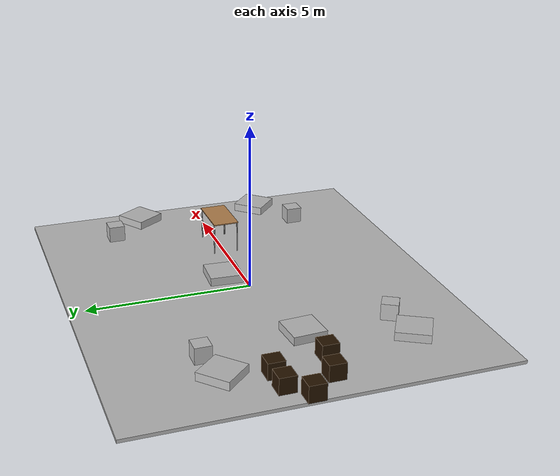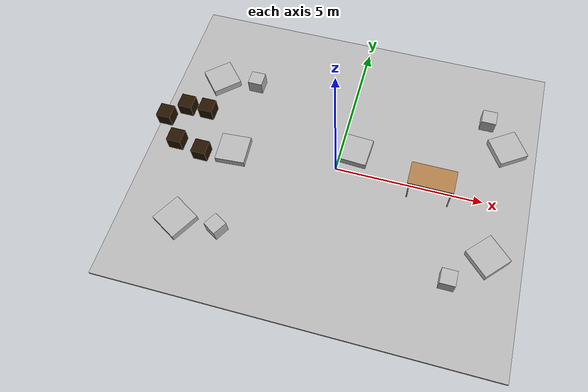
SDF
<sdf version="1.7">
 <world name="default">
  <scene><ambient>0.8 0.8 0.8 1</ambient><background>0.7 0.7 0.7 1</background><shadows>1</shadows></scene>
  <light name="sun" type="directional">
   <pose>-2 2 2 0 -0 0</pose>
   <diffuse>0.8 0.8 0.8 1</diffuse>
   <specular>0.2 0.2 0.2 1</specular>
   <attenuation>
    <range>1000</range>
    <constant>0.9</constant>
    <linear>0.01</linear>
    <quadratic>0.001</quadratic>
   </attenuation>
   <direction>-0.5 0.1 -0.9</direction>
   <spot><inner_angle>0</inner_angle><outer_angle>0</outer_angle><falloff>0</falloff></spot>
  </light>
  <model name="pisosala_forca">
   <static>1</static>
   <link name="course_link">
    <collision name="course_collision">
     <geometry><plane><normal>0 0 1</normal><size>10 13</size></plane></geometry>
     <surface><friction><ode><mu>100</mu><mu2>50</mu2></ode></friction></surface>
    </collision>
    <visual name="course_visual">
     <cast_shadows>0</cast_shadows>
     <geometry>
      <mesh><uri>model://forca/pisosala/materials/scripts/piso.dae</uri><scale>1 1 1</scale></mesh>
     </geometry>
    </visual>
   </link>
   <pose>0.031583 -0.000406 0 0 0 -1.57</pose>
  </model>
  <model name="lab404">
   <model name="table">
    <static>1</static>
    <link name="link">
     <collision name="surface">
      <pose>0 0 1 0 -0 0</pose>
      <geometry><box><size>1.5 0.8 0.03</size></box></geometry>
      <surface><friction><ode><mu>0.6</mu><mu2>0.6</mu2></ode></friction></surface>
     </collision>
     <visual name="visual1">
      <pose>0 0 1 0 -0 0</pose>
      <geometry><box><size>1.5 0.8 0.03</size></box></geometry>
      <material>
       <script><uri>file://media/materials/scripts/gazebo.material</uri><name>Gazebo/Wood</name></script>
      </material>
     </visual>
     <collision name="front_left_leg">
      <pose>0.68 0.38 0.5 0 -0 0</pose>
      <geometry><cylinder><radius>0.02</radius><length>1</length></cylinder></geometry>
     </collision>
     <visual name="front_left_leg">
      <pose>0.68 0.38 0.5 0 -0 0</pose>
      <geometry><cylinder><radius>0.02</radius><length>1</length></cylinder></geometry>
      <material>
       <script><uri>file://media/materials/scripts/gazebo.material</uri><name>Gazebo/Grey</name></script>
      </material>
     </visual>
     <collision name="front_right_leg">
      <pose>0.68 -0.38 0.5 0 -0 0</pose>
      <geometry><cylinder><radius>0.02</radius><length>1</length></cylinder></geometry>
     </collision>
     <visual name="front_right_leg">
      <pose>0.68 -0.38 0.5 0 -0 0</pose>
      <geometry><cylinder><radius>0.02</radius><length>1</length></cylinder></geometry>
      <material>
       <script><uri>file://media/materials/scripts/gazebo.material</uri><name>Gazebo/Grey</name></script>
      </material>
     </visual>
     <collision name="back_right_leg">
      <pose>-0.68 -0.38 0.5 0 -0 0</pose>
      <geometry><cylinder><radius>0.02</radius><length>1</length></cylinder></geometry>
     </collision>
     <visual name="back_right_leg">
      <pose>-0.68 -0.38 0.5 0 -0 0</pose>
      <geometry><cylinder><radius>0.02</radius><length>1</length></cylinder></geometry>
      <material>
       <script><uri>file://media/materials/scripts/gazebo.material</uri><name>Gazebo/Grey</name></script>
      </material>
     </visual>
     <collision name="back_left_leg">
      <pose>-0.68 0.38 0.5 0 -0 0</pose>
      <geometry><cylinder><radius>0.02</radius><length>1</length></cylinder></geometry>
     </collision>
     <visual name="back_left_leg">
      <pose>-0.68 0.38 0.5 0 -0 0</pose>
      <geometry><cylinder><radius>0.02</radius><length>1</length></cylinder></geometry>
      <material>
       <script><uri>file://media/materials/scripts/gazebo.material</uri><name>Gazebo/Grey</name></script>
      </material>
     </visual>
    </link>
   </model>
   <static>0</static>
   <pose>3.206 -0.04 0 0 -0 0</pose>
  </model>
  <model name="car">
   <static>1</static>
   <link name="box">
    <collision name="collision"><geometry><box><size>0.5 0.5 0.5</size></box></geometry></collision>
    <visual name="visual">
     <geometry><box><size>0.5 0.5 0.5</size></box></geometry>
     <material>
      <script>
       <uri>model://forca/objeto/car/materials/scripts</uri>
       <uri>model://forca/objeto/car/materials/textures</uri>
       <name>car</name>
      </script>
     </material>
    </visual>
   </link>
   <pose>4.31 -2.97 0.251305 0 -0 0</pose>
  </model>
  <model name="horse">
   <static>1</static>
   <link name="box">
    <collision name="collision"><geometry><box><size>0.5 0.5 0.5</size></box></geometry></collision>
    <visual name="visual">
     <geometry><box><size>0.5 0.5 0.5</size></box></geometry>
     <material>
      <script>
       <uri>model://forca/objeto/horse/materials/scripts</uri>
       <uri>model://forca/objeto/horse/materials/textures</uri>
       <name>horse</name>
      </script>
     </material>
    </visual>
   </link>
   <pose>-3.63207 2.60668 0.251305 0 -0 0</pose>
  </model>
  <model name="cow">
   <static>1</static>
   <link name="box">
    <collision name="collision"><geometry><box><size>0.5 0.5 0.5</size></box></geometry></collision>
    <visual name="visual">
     <geometry><box><size>0.5 0.5 0.5</size></box></geometry>
     <material>
      <script>
       <uri>model://forca/objeto/cow/materials/scripts</uri>
       <uri>model://forca/objeto/cow/materials/textures</uri>
       <name>cow</name>
      </script>
     </material>
    </visual>
   </link>
   <pose>4.707 3.08 0.251305 0 -0 0</pose>
  </model>
  <model name="dog">
   <static>1</static>
   <link name="box">
    <collision name="collision"><geometry><box><size>0.5 0.5 0.5</size></box></geometry></collision>
    <visual name="visual">
     <geometry><box><size>0.5 0.5 0.5</size></box></geometry>
     <material>
      <script>
       <uri>model://forca/objeto/dog/materials/scripts</uri>
       <uri>model://forca/objeto/dog/materials/textures</uri>
       <name>dog</name>
      </script>
     </material>
    </visual>
   </link>
   <pose>-3.10211 -3.12575 0.251305 0 0 -0.522088</pose>
  </model>
  <model name="creeper_50">
   <static>1</static>
   <link name="box">
    <collision name="collision">
     <geometry>
      <mesh><uri>model://pista_s/creepers/creeper_50/materials/textures/caixa.dae</uri><scale>1 1 1</scale></mesh>
     </geometry>
    </collision>
    <visual name="visual">
     <geometry>
      <mesh><uri>model://pista_s/creepers/creeper_50/materials/textures/caixa.dae</uri><scale>1 1 1</scale></mesh>
     </geometry>
    </visual>
   </link>
   <pose>5.37901 -1.96201 0.162 0 0 -2.32625</pose>
  </model>
  <model name="creeper_100">
   <static>1</static>
   <link name="box">
    <collision name="collision">
     <geometry>
      <mesh><uri>model://pista_s/creepers/creeper_100/materials/textures/caixa.dae</uri><scale>1 1 1</scale></mesh>
     </geometry>
    </collision>
    <visual name="visual">
     <geometry>
      <mesh><uri>model://pista_s/creepers/creeper_100/materials/textures/caixa.dae</uri><scale>1 1 1</scale></mesh>
     </geometry>
    </visual>
   </link>
   <pose>-4.88199 2.41036 0.162 0 -0 0.740136</pose>
  </model>
  <model name="creeper_150">
   <static>1</static>
   <link name="box">
    <collision name="collision">
     <geometry>
      <mesh><uri>model://pista_s/creepers/creeper_150/materials/textures/caixa.dae</uri><scale>1 1 1</scale></mesh>
     </geometry>
    </collision>
    <visual name="visual">
     <geometry>
      <mesh><uri>model://pista_s/creepers/creeper_150/materials/textures/caixa.dae</uri><scale>1 1 1</scale></mesh>
     </geometry>
    </visual>
   </link>
   <pose>-4.44136 -3.19448 0.162 0 -0 2.62417</pose>
  </model>
  <model name="creeper_200">
   <static>1</static>
   <link name="box">
    <collision name="collision">
     <geometry>
      <mesh><uri>model://pista_s/creepers/creeper_200/materials/textures/caixa.dae</uri><scale>1 1 1</scale></mesh>
     </geometry>
    </collision>
    <visual name="visual">
     <geometry>
      <mesh><uri>model://pista_s/creepers/creeper_200/materials/textures/caixa.dae</uri><scale>1 1 1</scale></mesh>
     </geometry>
    </visual>
   </link>
   <pose>0.502752 0.690028 0.162 0 0 -0.056589</pose>
  </model>
  <physics type="ode">
   <real_time_update_rate>1000</real_time_update_rate>
   <max_step_size>0.001</max_step_size>
   <real_time_factor>1</real_time_factor>
   <ode>
    <solver>
     <type>quick</type>
     <iters>150</iters>
     <precon_iters>0</precon_iters>
     <sor>1.4</sor>
     <use_dynamic_moi_rescaling>1</use_dynamic_moi_rescaling>
    </solver>
    <constraints>
     <cfm>1e-05</cfm>
     <erp>0.2</erp>
     <contact_max_correcting_vel>2000</contact_max_correcting_vel>
     <contact_surface_layer>0.01</contact_surface_layer>
    </constraints>
   </ode>
  </physics>
  <gravity>0 0 -9.8</gravity>
  <magnetic_field>6e-06 2.3e-05 -4.2e-05</magnetic_field>
  <atmosphere type="adiabatic"/>
  <spherical_coordinates>
   <surface_model>EARTH_WGS84</surface_model>
   <latitude_deg>0</latitude_deg>
   <longitude_deg>0</longitude_deg>
   <elevation>0</elevation>
   <heading_deg>0</heading_deg>
  </spherical_coordinates>
  <model name="cubo_1">
   <link name="link">
    <inertial>
     <mass>1</mass>
     <inertia>
      <ixx>0.166667</ixx>
      <ixy>0</ixy>
      <ixz>0</ixz>
      <iyy>0.166667</iyy>
      <iyz>0</iyz>
      <izz>0.166667</izz>
     </inertia>
    </inertial>
    <visual name="visual">
     <geometry><box><size>0.5 0.5 0.5</size></box></geometry>
     <material>
      <script><name>Gazebo/Grey</name><uri>file://media/materials/scripts/gazebo.material</uri></script>
      <shader type="vertex"><normal_map>__default__</normal_map></shader>
      <ambient>0.15 0.075 0 1</ambient>
      <diffuse>0.15 0.075 0 1</diffuse>
      <specular>0.15 0.075 0 1</specular>
      <emissive>0.15 0.075 0 1</emissive>
     </material>
    </visual>
    <collision name="collision">
     <geometry><box><size>0.5 0.5 0.5</size></box></geometry>
     <surface>
      <friction>
       <ode><mu>1</mu><mu2>1</mu2><fdir1>0 0 0</fdir1><slip1>0</slip1><slip2>0</slip2></ode>
       <torsional>
        <coefficient>1</coefficient>
        <patch_radius>0</patch_radius>
        <surface_radius>0</surface_radius>
        <use_patch_radius>1</use_patch_radius>
        <ode><slip>0</slip></ode>
       </torsional>
      </friction>
      <bounce><restitution_coefficient>0</restitution_coefficient><threshold>1e+06</threshold></bounce>
      <contact>
       <collide_without_contact>0</collide_without_contact>
       <collide_without_contact_bitmask>1</collide_without_contact_bitmask>
       <collide_bitmask>1</collide_bitmask>
       <ode>
        <soft_cfm>0</soft_cfm>
        <soft_erp>0.2</soft_erp>
        <kp>1e+13</kp>
        <kd>1</kd>
        <max_vel>0.01</max_vel>
        <min_depth>0</min_depth>
       </ode>
       <bullet>
        <split_impulse>1</split_impulse>
        <split_impulse_penetration_threshold>-0.01</split_impulse_penetration_threshold>
        <soft_cfm>0</soft_cfm>
        <soft_erp>0.2</soft_erp>
        <kp>1e+13</kp>
        <kd>1</kd>
       </bullet>
      </contact>
     </surface>
    </collision>
   </link>
   <static>0</static>
   <pose>-6.27015 0.463716 0.249995 9e-06 -9e-06 0</pose>
  </model>
  <model name="cubo_1_0">
   <link name="link">
    <inertial>
     <mass>1</mass>
     <inertia>
      <ixx>0.166667</ixx>
      <ixy>0</ixy>
      <ixz>0</ixz>
      <iyy>0.166667</iyy>
      <iyz>0</iyz>
      <izz>0.166667</izz>
     </inertia>
    </inertial>
    <visual name="visual">
     <geometry><box><size>0.5 0.5 0.5</size></box></geometry>
     <material>
      <script><name>Gazebo/Grey</name><uri>file://media/materials/scripts/gazebo.material</uri></script>
      <shader type="vertex"><normal_map>__default__</normal_map></shader>
      <ambient>0.15 0.075 0 1</ambient>
      <diffuse>0.15 0.075 0 1</diffuse>
      <specular>0.15 0.075 0 1</specular>
      <emissive>0.15 0.075 0 1</emissive>
     </material>
    </visual>
    <collision name="collision">
     <geometry><box><size>0.5 0.5 0.5</size></box></geometry>
     <surface>
      <friction>
       <ode><mu>1</mu><mu2>1</mu2><fdir1>0 0 0</fdir1><slip1>0</slip1><slip2>0</slip2></ode>
       <torsional>
        <coefficient>1</coefficient>
        <patch_radius>0</patch_radius>
        <surface_radius>0</surface_radius>
        <use_patch_radius>1</use_patch_radius>
        <ode><slip>0</slip></ode>
       </torsional>
      </friction>
      <bounce><restitution_coefficient>0</restitution_coefficient><threshold>1e+06</threshold></bounce>
      <contact>
       <collide_without_contact>0</collide_without_contact>
       <collide_without_contact_bitmask>1</collide_without_contact_bitmask>
       <collide_bitmask>1</collide_bitmask>
       <ode>
        <soft_cfm>0</soft_cfm>
        <soft_erp>0.2</soft_erp>
        <kp>1e+13</kp>
        <kd>1</kd>
        <max_vel>0.01</max_vel>
        <min_depth>0</min_depth>
       </ode>
       <bullet>
        <split_impulse>1</split_impulse>
        <split_impulse_penetration_threshold>-0.01</split_impulse_penetration_threshold>
        <soft_cfm>0</soft_cfm>
        <soft_erp>0.2</soft_erp>
        <kp>1e+13</kp>
        <kd>1</kd>
       </bullet>
      </contact>
     </surface>
    </collision>
   </link>
   <static>0</static>
   <pose>-5.54412 -0.383655 0.249996 -9e-06 9e-06 0</pose>
  </model>
  <model name="cubo_1_1">
   <link name="link">
    <inertial>
     <mass>1</mass>
     <inertia>
      <ixx>0.166667</ixx>
      <ixy>0</ixy>
      <ixz>0</ixz>
      <iyy>0.166667</iyy>
      <iyz>0</iyz>
      <izz>0.166667</izz>
     </inertia>
    </inertial>
    <visual name="visual">
     <geometry><box><size>0.5 0.5 0.5</size></box></geometry>
     <material>
      <script><name>Gazebo/Grey</name><uri>file://media/materials/scripts/gazebo.material</uri></script>
      <shader type="vertex"><normal_map>__default__</normal_map></shader>
      <ambient>0.15 0.075 0 1</ambient>
      <diffuse>0.15 0.075 0 1</diffuse>
      <specular>0.15 0.075 0 1</specular>
      <emissive>0.15 0.075 0 1</emissive>
     </material>
    </visual>
    <collision name="collision">
     <geometry><box><size>0.5 0.5 0.5</size></box></geometry>
     <surface>
      <friction>
       <ode><mu>1</mu><mu2>1</mu2><fdir1>0 0 0</fdir1><slip1>0</slip1><slip2>0</slip2></ode>
       <torsional>
        <coefficient>1</coefficient>
        <patch_radius>0</patch_radius>
        <surface_radius>0</surface_radius>
        <use_patch_radius>1</use_patch_radius>
        <ode><slip>0</slip></ode>
       </torsional>
      </friction>
      <bounce><restitution_coefficient>0</restitution_coefficient><threshold>1e+06</threshold></bounce>
      <contact>
       <collide_without_contact>0</collide_without_contact>
       <collide_without_contact_bitmask>1</collide_without_contact_bitmask>
       <collide_bitmask>1</collide_bitmask>
       <ode>
        <soft_cfm>0</soft_cfm>
        <soft_erp>0.2</soft_erp>
        <kp>1e+13</kp>
        <kd>1</kd>
        <max_vel>0.01</max_vel>
        <min_depth>0</min_depth>
       </ode>
       <bullet>
        <split_impulse>1</split_impulse>
        <split_impulse_penetration_threshold>-0.01</split_impulse_penetration_threshold>
        <soft_cfm>0</soft_cfm>
        <soft_erp>0.2</soft_erp>
        <kp>1e+13</kp>
        <kd>1</kd>
       </bullet>
      </contact>
     </surface>
    </collision>
   </link>
   <static>0</static>
   <pose>-5.70256 1.03089 0.249995 9e-06 -9e-06 0</pose>
  </model>
  <model name="cubo_1_2">
   <link name="link">
    <inertial>
     <mass>1</mass>
     <inertia>
      <ixx>0.166667</ixx>
      <ixy>0</ixy>
      <ixz>0</ixz>
      <iyy>0.166667</iyy>
      <iyz>0</iyz>
      <izz>0.166667</izz>
     </inertia>
    </inertial>
    <visual name="visual">
     <geometry><box><size>0.5 0.5 0.5</size></box></geometry>
     <material>
      <script><name>Gazebo/Grey</name><uri>file://media/materials/scripts/gazebo.material</uri></script>
      <shader type="vertex"><normal_map>__default__</normal_map></shader>
      <ambient>0.15 0.075 0 1</ambient>
      <diffuse>0.15 0.075 0 1</diffuse>
      <specular>0.15 0.075 0 1</specular>
      <emissive>0.15 0.075 0 1</emissive>
     </material>
    </visual>
    <collision name="collision">
     <geometry><box><size>0.5 0.5 0.5</size></box></geometry>
     <surface>
      <friction>
       <ode><mu>1</mu><mu2>1</mu2><fdir1>0 0 0</fdir1><slip1>0</slip1><slip2>0</slip2></ode>
       <torsional>
        <coefficient>1</coefficient>
        <patch_radius>0</patch_radius>
        <surface_radius>0</surface_radius>
        <use_patch_radius>1</use_patch_radius>
        <ode><slip>0</slip></ode>
       </torsional>
      </friction>
      <bounce><restitution_coefficient>0</restitution_coefficient><threshold>1e+06</threshold></bounce>
      <contact>
       <collide_without_contact>0</collide_without_contact>
       <collide_without_contact_bitmask>1</collide_without_contact_bitmask>
       <collide_bitmask>1</collide_bitmask>
       <ode>
        <soft_cfm>0</soft_cfm>
        <soft_erp>0.2</soft_erp>
        <kp>1e+13</kp>
        <kd>1</kd>
        <max_vel>0.01</max_vel>
        <min_depth>0</min_depth>
       </ode>
       <bullet>
        <split_impulse>1</split_impulse>
        <split_impulse_penetration_threshold>-0.01</split_impulse_penetration_threshold>
        <soft_cfm>0</soft_cfm>
        <soft_erp>0.2</soft_erp>
        <kp>1e+13</kp>
        <kd>1</kd>
       </bullet>
      </contact>
     </surface>
    </collision>
   </link>
   <static>0</static>
   <pose>-4.57624 -0.592485 0.249995 9e-06 -9e-06 0</pose>
  </model>
  <model name="cubo_1_3">
   <link name="link">
    <inertial>
     <mass>1</mass>
     <inertia>
      <ixx>0.166667</ixx>
      <ixy>0</ixy>
      <ixz>0</ixz>
      <iyy>0.166667</iyy>
      <iyz>0</iyz>
      <izz>0.166667</izz>
     </inertia>
    </inertial>
    <visual name="visual">
     <geometry><box><size>0.5 0.5 0.5</size></box></geometry>
     <material>
      <script><name>Gazebo/Grey</name><uri>file://media/materials/scripts/gazebo.material</uri></script>
      <shader type="vertex"><normal_map>__default__</normal_map></shader>
      <ambient>0.15 0.075 0 1</ambient>
      <diffuse>0.15 0.075 0 1</diffuse>
      <specular>0.15 0.075 0 1</specular>
      <emissive>0.15 0.075 0 1</emissive>
     </material>
    </visual>
    <collision name="collision">
     <geometry><box><size>0.5 0.5 0.5</size></box></geometry>
     <surface>
      <friction>
       <ode><mu>1</mu><mu2>1</mu2><fdir1>0 0 0</fdir1><slip1>0</slip1><slip2>0</slip2></ode>
       <torsional>
        <coefficient>1</coefficient>
        <patch_radius>0</patch_radius>
        <surface_radius>0</surface_radius>
        <use_patch_radius>1</use_patch_radius>
        <ode><slip>0</slip></ode>
       </torsional>
      </friction>
      <bounce><restitution_coefficient>0</restitution_coefficient><threshold>1e+06</threshold></bounce>
      <contact>
       <collide_without_contact>0</collide_without_contact>
       <collide_without_contact_bitmask>1</collide_without_contact_bitmask>
       <collide_bitmask>1</collide_bitmask>
       <ode>
        <soft_cfm>0</soft_cfm>
        <soft_erp>0.2</soft_erp>
        <kp>1e+13</kp>
        <kd>1</kd>
        <max_vel>0.01</max_vel>
        <min_depth>0</min_depth>
       </ode>
       <bullet>
        <split_impulse>1</split_impulse>
        <split_impulse_penetration_threshold>-0.01</split_impulse_penetration_threshold>
        <soft_cfm>0</soft_cfm>
        <soft_erp>0.2</soft_erp>
        <kp>1e+13</kp>
        <kd>1</kd>
       </bullet>
      </contact>
     </surface>
    </collision>
   </link>
   <static>0</static>
   <pose>-4.95906 1.05573 0.249995 -9e-06 9e-06 0</pose>
  </model>
  <model name="creeper_150_clone">
   <static>1</static>
   <link name="box">
    <collision name="collision">
     <geometry>
      <mesh><uri>model://pista_s/creepers/creeper_150/materials/textures/caixa.dae</uri><scale>1 1 1</scale></mesh>
     </geometry>
    </collision>
    <visual name="visual">
     <geometry>
      <mesh><uri>model://pista_s/creepers/creeper_150/materials/textures/caixa.dae</uri><scale>1 1 1</scale></mesh>
     </geometry>
    </visual>
   </link>
   <pose>-3.50708 -0.321633 0.162 0 -0 1.63985</pose>
  </model>
  <model name="creeper_150_clone_clone_0">
   <static>1</static>
   <link name="box">
    <collision name="collision">
     <geometry>
      <mesh><uri>model://pista_s/creepers/creeper_150/materials/textures/caixa.dae</uri><scale>1 1 1</scale></mesh>
     </geometry>
    </collision>
    <visual name="visual">
     <geometry>
      <mesh><uri>model://pista_s/creepers/creeper_150/materials/textures/caixa.dae</uri><scale>1 1 1</scale></mesh>
     </geometry>
    </visual>
   </link>
   <pose>5.47956 2.06535 0.162 0 0 -0.985289</pose>
  </model>
 </world>
</sdf>
